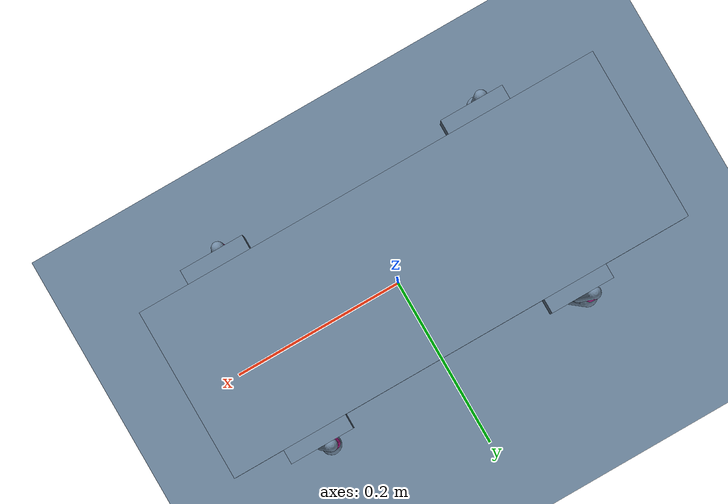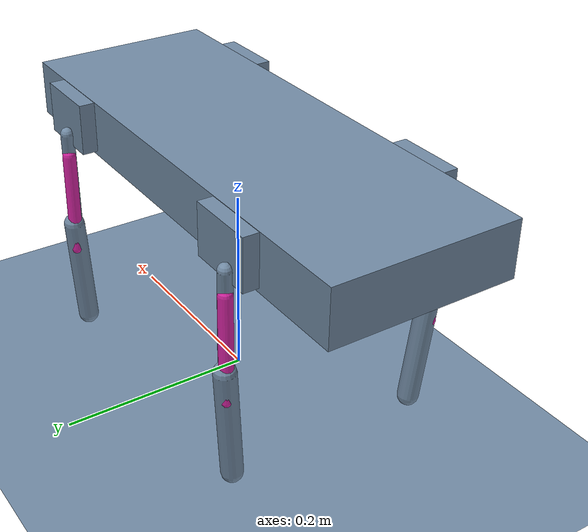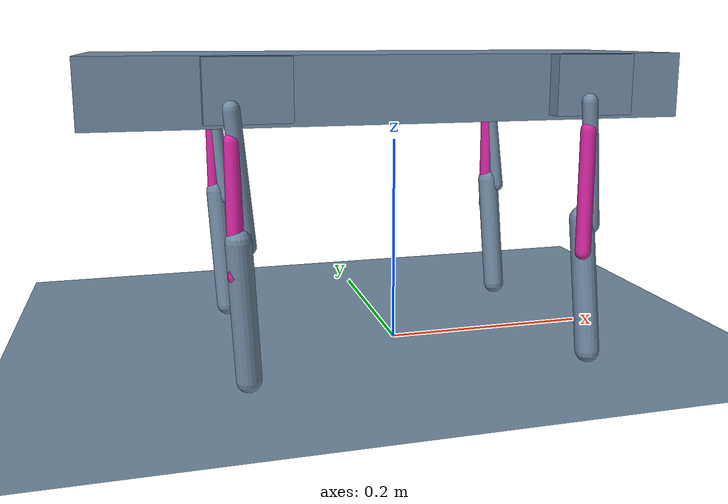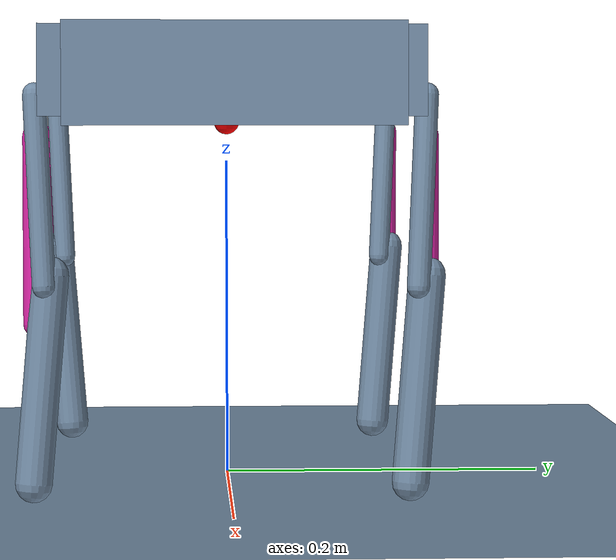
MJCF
<mujoco model="robot_dog_enhanced">
  <compiler angle="radian" autolimits="true" inertiafromgeom="false"/>
  <option timestep="0.002" gravity="0 0 -9.81" integrator="implicitfast"
          solver="Newton" iterations="20" tolerance="1e-10"
          cone="elliptic"/>

  <default>
    <joint damping="0.8" armature="0.01"/>
    <geom condim="3" friction="0.9 0.02 0.001" solref="0.012 1"
          solimp="0.9 0.95 0.001" rgba="0.45 0.55 0.65 1"/>
    <position kp="55" kv="4" ctrllimited="true" forcelimited="true"
              forcerange="-35 35"/>
  </default>

  <asset>
    <material name="ground" rgba="0.24 0.27 0.30 1"/>
    <material name="body" rgba="0.18 0.40 0.68 1"/>
    <material name="right_leg" rgba="0.78 0.45 0.16 1"/>
    <material name="left_leg" rgba="0.20 0.62 0.42 1"/>
    <material name="foot" rgba="0.12 0.12 0.12 1"/>
  </asset>

  <worldbody>
    <light pos="0 0 2" dir="0 0 -1" diffuse="0.8 0.8 0.8"/>
    <geom name="ground" type="plane" size="2 2 0.1" material="ground"
          density="0" friction="0.9 0.02 0.001"/>

    <body name="base" pos="0 0 0.225">
      <freejoint name="base_free"/>
      <inertial pos="-0.008382264 0.000014798 0.030113658"
                mass="10.123728045"
                fullinertia="0.03254 0.280159 0.3037 0.000031 0.001839 0.000001"/>
      <geom name="base_geom" type="box"
            pos="-0.019599 0 0.02905"
            size="0.262696 0.09575 0.02905" material="body"/>
      <site name="imu" pos="0 0 0" size="0.008" rgba="1 0 0 1"/>

      <body name="front_right_hip" pos="0.1184 -0.076 0.0196">
        <joint name="Revolute_1" type="hinge" axis="1 0 0"
               range="-0.6 0.6"/>
        <inertial pos="0.033226213 -0.004607471 0.011279981"
                  mass="0.791396211"
                  fullinertia="0.000288 0.000453 0.000409 -0.000014 -0.000006 0.000006"/>
        <geom name="front_right_hip_geom" type="box"
              pos="0.03235 -0.00461 0.01154"
              size="0.03575 0.03124 0.02654" material="right_leg"/>
        <body name="front_right_thigh" pos="0.025397 -0.039329 -0.002342">
          <joint name="Revolute_25" type="hinge" axis="0 1 0"
                 range="-1.2 1.2"/>
          <inertial pos="0.005235458 0.002814845 -0.056117039"
                    mass="0.126779894"
                    fullinertia="0.000135 0.000137 0.000006 0 0.000010 0.000001"/>
          <geom name="front_right_thigh_geom" type="capsule"
                fromto="0 0 0 0.010471 0.005630 -0.112234"
                size="0.007" material="right_leg"/>
          <body name="front_right_foot" pos="0.002333 0.00898 -0.105888">
            <joint name="Revolute_40" type="hinge" axis="0 1 0"
                   range="-2.0 0.3"/>
            <inertial pos="0.003127876 -0.004997933 -0.061228444"
                      mass="0.313144512"
                      fullinertia="0.000443 0.000438 0.000025 0 0.000001 0"/>
            <geom name="front_right_foot_geom" type="capsule"
                  fromto="0 0 0 0.006256 -0.009996 -0.122457"
                  size="0.011" material="foot"/>
            <site name="front_right_closure_site"
                  pos="-0.000253 -0.00898 -0.047433" size="0.004"
                  rgba="0.72 0.24 0.56 1"/>
            <site name="front_right_foot_site" pos="0.006256 -0.009996 -0.122457"
                  size="0.012" rgba="0 0 0 0"/>
          </body>
        </body>
        <body name="front_right_closure_proximal"
              pos="0.025397 -0.039329 -0.002342">
          <joint name="closure_front_right_proximal" type="hinge"
                 axis="0 1 0" range="-3.14159 3.14159"
                 damping="0.2" armature="0.001"/>
          <inertial pos="0 0 -0.01225" mass="0.016567435"
                    diaginertia="0.000000913 0.000000913 0.000000168"/>
          <geom name="front_right_closure_proximal_geom" type="capsule"
                fromto="0 0 0 0 0 -0.0245" size="0.0045"
                contype="0" conaffinity="0"
                rgba="0.85 0.15 0.65 1"/>
          <body name="front_right_closure_distal" pos="0 0 -0.0245">
            <joint name="closure_front_right_distal" type="hinge"
                   axis="0 1 0" range="-3.14159 3.14159"
                   damping="0.2" armature="0.001"/>
            <inertial pos="0 0 -0.05529" mass="0.163188701"
                      diaginertia="0.000168287 0.000168287 0.000003998"/>
            <geom name="front_right_closure_distal_geom" type="capsule"
                  fromto="0 0 0 0 0 -0.11058" size="0.007"
                  contype="0" conaffinity="0"
                  rgba="0.85 0.15 0.65 1"/>
            <site name="front_right_closure_endpoint"
                  pos="0 0 -0.11058" size="0.004"
                  rgba="0.72 0.24 0.56 1"/>
          </body>
        </body>
      </body>

      <body name="rear_right_hip" pos="-0.1184 -0.076 0.0196">
        <joint name="Revolute_3" type="hinge" axis="1 0 0"
               range="-0.6 0.6"/>
        <inertial pos="-0.034533607 -0.004633032 0.011213744"
                  mass="0.791396211"
                  fullinertia="0.000288 0.000458 0.000413 -0.000012 0.000008 0.000006"/>
        <geom name="rear_right_hip_geom" type="box"
              pos="-0.03235 -0.00461 0.01154"
              size="0.03575 0.03124 0.02649" material="right_leg"/>
        <body name="rear_right_thigh" pos="-0.046637 -0.039355 -0.002438">
          <joint name="Revolute_20" type="hinge" axis="0 1 0"
                 range="-1.2 1.2"/>
          <inertial pos="0.005235109 0.002814997 -0.056117279"
                    mass="0.126779894"
                    fullinertia="0.000135 0.000137 0.000006 0 0.000010 0.000001"/>
          <geom name="rear_right_thigh_geom" type="capsule"
                fromto="0 0 0 0.010470 0.005630 -0.112235"
                size="0.007" material="right_leg"/>
          <body name="rear_right_foot" pos="0.002333 0 -0.105888">
            <joint name="Revolute_23" type="hinge" axis="0 1 0"
                   range="-2.0 0.3"/>
            <inertial pos="0.003127527 0.005052219 -0.061228684"
                      mass="0.313144512"
                      fullinertia="0.000443 0.000438 0.000025 0 0.000001 0"/>
            <geom name="rear_right_foot_geom" type="capsule"
                  fromto="0 0 0 0.006255 0.010104 -0.122457"
                  size="0.011" material="foot"/>
            <site name="rear_right_closure_site"
                  pos="-0.000253 0 -0.047434" size="0.004"
                  rgba="0.72 0.24 0.56 1"/>
            <site name="rear_right_foot_site" pos="0.006255 0.010104 -0.122457"
                  size="0.012" rgba="0 0 0 0"/>
          </body>
        </body>
        <body name="rear_right_closure_proximal"
              pos="-0.046637 -0.039355 -0.002438">
          <joint name="closure_rear_right_proximal" type="hinge"
                 axis="0 1 0" range="-3.14159 3.14159"
                 damping="0.2" armature="0.001"/>
          <inertial pos="0 0 -0.01225" mass="0.016567435"
                    diaginertia="0.000000913 0.000000913 0.000000168"/>
          <geom name="rear_right_closure_proximal_geom" type="capsule"
                fromto="0 0 0 0 0 -0.0245" size="0.0045"
                contype="0" conaffinity="0"
                rgba="0.85 0.15 0.65 1"/>
          <body name="rear_right_closure_distal" pos="0 0 -0.0245">
            <joint name="closure_rear_right_distal" type="hinge"
                   axis="0 1 0" range="-3.14159 3.14159"
                   damping="0.2" armature="0.001"/>
            <inertial pos="0 0 -0.05529" mass="0.163188701"
                      diaginertia="0.000168287 0.000168287 0.000003998"/>
            <geom name="rear_right_closure_distal_geom" type="capsule"
                  fromto="0 0 0 0 0 -0.11058" size="0.007"
                  contype="0" conaffinity="0"
                  rgba="0.85 0.15 0.65 1"/>
            <site name="rear_right_closure_endpoint"
                  pos="0 0 -0.11058" size="0.004"
                  rgba="0.72 0.24 0.56 1"/>
          </body>
        </body>
      </body>

      <body name="rear_left_hip" pos="-0.1184 0.076 0.0196">
        <joint name="Revolute_4" type="hinge" axis="1 0 0"
               range="-0.6 0.6"/>
        <inertial pos="-0.034533607 0.004633033 0.011213744"
                  mass="0.791396223"
                  fullinertia="0.000288 0.000458 0.000413 0.000012 0.000008 -0.000006"/>
        <geom name="rear_left_hip_geom" type="box"
              pos="-0.03235 0.00461 0.01154"
              size="0.03575 0.03124 0.02649" material="left_leg"/>
        <body name="rear_left_thigh" pos="-0.046637 0.039355 -0.002438">
          <joint name="Revolute_35" type="hinge" axis="0 1 0"
                 range="-1.2 1.2"/>
          <inertial pos="0.005235109 -0.002814997 -0.056117279"
                    mass="0.126779894"
                    fullinertia="0.000135 0.000137 0.000006 0 0.000010 -0.000001"/>
          <geom name="rear_left_thigh_geom" type="capsule"
                fromto="0 0 0 0.010470 -0.005630 -0.112235"
                size="0.007" material="left_leg"/>
          <body name="rear_left_foot" pos="0.002333 0 -0.105888">
            <joint name="Revolute_45" type="hinge" axis="0 1 0"
                   range="-2.0 0.3"/>
            <inertial pos="0.003127527 -0.005052219 -0.061228684"
                      mass="0.313144512"
                      fullinertia="0.000443 0.000438 0.000025 0 0.000001 0"/>
            <geom name="rear_left_foot_geom" type="capsule"
                  fromto="0 0 0 0.006255 -0.010104 -0.122457"
                  size="0.011" material="foot"/>
            <site name="rear_left_closure_site"
                  pos="-0.000253 0 -0.047434" size="0.004"
                  rgba="0.72 0.24 0.56 1"/>
            <site name="rear_left_foot_site" pos="0.006255 -0.010104 -0.122457"
                  size="0.012" rgba="0 0 0 0"/>
          </body>
        </body>
        <body name="rear_left_closure_proximal"
              pos="-0.046637 0.039355 -0.002438">
          <joint name="closure_rear_left_proximal" type="hinge"
                 axis="0 1 0" range="-3.14159 3.14159"
                 damping="0.2" armature="0.001"/>
          <inertial pos="0 0 -0.01225" mass="0.016567435"
                    diaginertia="0.000000913 0.000000913 0.000000168"/>
          <geom name="rear_left_closure_proximal_geom" type="capsule"
                fromto="0 0 0 0 0 -0.0245" size="0.0045"
                contype="0" conaffinity="0"
                rgba="0.85 0.15 0.65 1"/>
          <body name="rear_left_closure_distal" pos="0 0 -0.0245">
            <joint name="closure_rear_left_distal" type="hinge"
                   axis="0 1 0" range="-3.14159 3.14159"
                   damping="0.2" armature="0.001"/>
            <inertial pos="0 0 -0.05529" mass="0.163188701"
                      diaginertia="0.000168287 0.000168287 0.000003998"/>
            <geom name="rear_left_closure_distal_geom" type="capsule"
                  fromto="0 0 0 0 0 -0.11058" size="0.007"
                  contype="0" conaffinity="0"
                  rgba="0.85 0.15 0.65 1"/>
            <site name="rear_left_closure_endpoint"
                  pos="0 0 -0.11058" size="0.004"
                  rgba="0.72 0.24 0.56 1"/>
          </body>
        </body>
      </body>

      <body name="front_left_hip" pos="0.1184 0.076 0.0196">
        <joint name="Revolute_5" type="hinge" axis="1 0 0"
               range="-0.6 0.6"/>
        <inertial pos="0.033226213 0.004607471 0.011279981"
                  mass="0.791396223"
                  fullinertia="0.000288 0.000453 0.000409 0.000014 -0.000006 -0.000006"/>
        <geom name="front_left_hip_geom" type="box"
              pos="0.03235 0.00461 0.01154"
              size="0.03575 0.03124 0.02654" material="left_leg"/>
        <body name="front_left_thigh" pos="0.025397 0.039329 -0.002342">
          <joint name="Revolute_31" type="hinge" axis="0 1 0"
                 range="-1.2 1.2"/>
          <inertial pos="0.005597894 -0.002814845 -0.056423680"
                    mass="0.126779894"
                    fullinertia="0.000135 0.000137 0.000006 0 0.000010 -0.000001"/>
          <geom name="front_left_thigh_geom" type="capsule"
                fromto="0 0 0 0.011196 -0.005630 -0.112847"
                size="0.007" material="left_leg"/>
          <body name="front_left_foot" pos="0.002695 0 -0.106195">
            <joint name="Revolute_48" type="hinge" axis="0 1 0"
                   range="-2.0 0.3"/>
            <inertial pos="0.003128312 -0.005052067 -0.061228085"
                      mass="0.313144512"
                      fullinertia="0.000443 0.000438 0.000025 0 0.000001 0"/>
            <geom name="front_left_foot_geom" type="capsule"
                  fromto="0 0 0 0.006257 -0.010104 -0.122456"
                  size="0.011" material="foot"/>
            <site name="front_left_closure_site"
                  pos="-0.000252 0 -0.047433" size="0.004"
                  rgba="0.72 0.24 0.56 1"/>
            <site name="front_left_foot_site" pos="0.006257 -0.010104 -0.122456"
                  size="0.012" rgba="0 0 0 0"/>
          </body>
        </body>
        <body name="front_left_closure_proximal"
              pos="0.025397 0.039329 -0.002342">
          <joint name="closure_front_left_proximal" type="hinge"
                 axis="0 1 0" range="-3.14159 3.14159"
                 damping="0.2" armature="0.001"/>
          <inertial pos="0 0 -0.01225" mass="0.016567435"
                    diaginertia="0.000000913 0.000000913 0.000000168"/>
          <geom name="front_left_closure_proximal_geom" type="capsule"
                fromto="0 0 0 0 0 -0.0245" size="0.0045"
                contype="0" conaffinity="0"
                rgba="0.85 0.15 0.65 1"/>
          <body name="front_left_closure_distal" pos="0 0 -0.0245">
            <joint name="closure_front_left_distal" type="hinge"
                   axis="0 1 0" range="-3.14159 3.14159"
                   damping="0.2" armature="0.001"/>
            <inertial pos="0 0 -0.05529" mass="0.163188701"
                      diaginertia="0.000168287 0.000168287 0.000003998"/>
            <geom name="front_left_closure_distal_geom" type="capsule"
                  fromto="0 0 0 0 0 -0.11058" size="0.007"
                  contype="0" conaffinity="0"
                  rgba="0.85 0.15 0.65 1"/>
            <site name="front_left_closure_endpoint"
                  pos="0 0 -0.11058" size="0.004"
                  rgba="0.72 0.24 0.56 1"/>
          </body>
        </body>
      </body>
    </body>
  </worldbody>

  <equality>
    <connect name="front_right_four_bar_closure"
             site1="front_right_closure_endpoint"
             site2="front_right_closure_site"
             solref="0.004 1" solimp="0.95 0.99 0.001"/>
    <connect name="rear_right_four_bar_closure"
             site1="rear_right_closure_endpoint"
             site2="rear_right_closure_site"
             solref="0.004 1" solimp="0.95 0.99 0.001"/>
    <connect name="rear_left_four_bar_closure"
             site1="rear_left_closure_endpoint"
             site2="rear_left_closure_site"
             solref="0.004 1" solimp="0.95 0.99 0.001"/>
    <connect name="front_left_four_bar_closure"
             site1="front_left_closure_endpoint"
             site2="front_left_closure_site"
             solref="0.004 1" solimp="0.95 0.99 0.001"/>
  </equality>

  <actuator>
    <position name="act_Revolute_1" joint="Revolute_1" ctrlrange="-0.6 0.6"/>
    <position name="act_Revolute_25" joint="Revolute_25" ctrlrange="-1.2 1.2"/>
    <position name="act_Revolute_40" joint="Revolute_40" ctrlrange="-2.0 0.3"/>
    <position name="act_Revolute_3" joint="Revolute_3" ctrlrange="-0.6 0.6"/>
    <position name="act_Revolute_20" joint="Revolute_20" ctrlrange="-1.2 1.2"/>
    <position name="act_Revolute_23" joint="Revolute_23" ctrlrange="-2.0 0.3"/>
    <position name="act_Revolute_4" joint="Revolute_4" ctrlrange="-0.6 0.6"/>
    <position name="act_Revolute_35" joint="Revolute_35" ctrlrange="-1.2 1.2"/>
    <position name="act_Revolute_45" joint="Revolute_45" ctrlrange="-2.0 0.3"/>
    <position name="act_Revolute_5" joint="Revolute_5" ctrlrange="-0.6 0.6"/>
    <position name="act_Revolute_31" joint="Revolute_31" ctrlrange="-1.2 1.2"/>
    <position name="act_Revolute_48" joint="Revolute_48" ctrlrange="-2.0 0.3"/>
  </actuator>

  <sensor>
    <gyro name="imu_gyro" site="imu"/>
    <accelerometer name="imu_specific_force" site="imu"/>
  </sensor>

  <keyframe>
    <key name="safe_stance"
         qpos="0 0 0.225 1 0 0 0
               0 0.45 -0.90 0.168 0  0 0.45 -0.90
               0.168 0  0 0.45 -0.90 0.168 0
               0 0.45 -0.90 0.168 0"
         ctrl="0 0.45 -0.90  0 0.45 -0.90
               0 0.45 -0.90  0 0.45 -0.90"/>
  </keyframe>
</mujoco>
